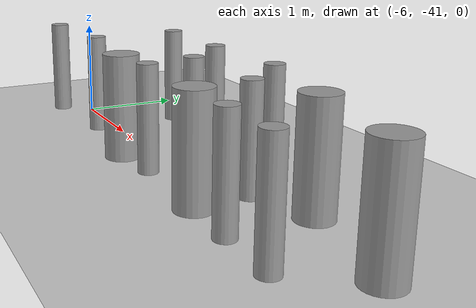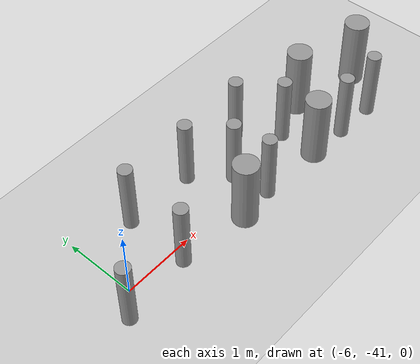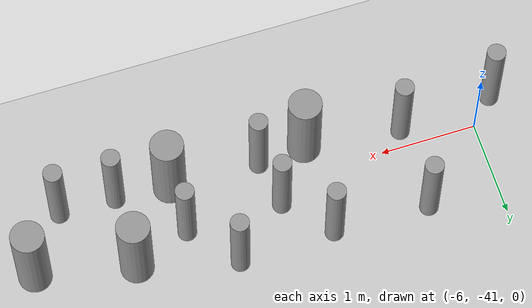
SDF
<sdf version="1.6">
 <world name="default">
  <model name="ground_plane">
   <static>1</static>
   <link name="link">
    <collision name="collision">
     <geometry><plane><normal>0 0 1</normal><size>100 100</size></plane></geometry>
     <surface><friction><ode><mu>100</mu><mu2>50</mu2></ode></friction></surface>
    </collision>
    <visual name="visual">
     <cast_shadows>0</cast_shadows>
     <geometry><plane><normal>0 0 1</normal><size>100 100</size></plane></geometry>
     <material>
      <script><uri>file://media/materials/scripts/gazebo.material</uri><name>Gazebo/Grey</name></script>
     </material>
    </visual>
   </link>
  </model>
  <model name="cyl_wall_clone_clone_3">
   <link name="link_0">
    <pose>-2.73893 -0.366465 0 0 -0 0</pose>
    <inertial>
     <mass>0.0374993</mass>
     <inertia>
      <ixx>0.00321281</ixx>
      <ixy>0</ixy>
      <ixz>0</ixz>
      <iyy>0.00321281</iyy>
      <iyz>0</iyz>
      <izz>0.000175774</izz>
     </inertia>
    </inertial>
    <visual name="visual">
     <geometry><cylinder><radius>0.0968661</radius><length>1</length></cylinder></geometry>
     <material>
      <lighting>1</lighting>
      <script><uri>file://media/materials/scripts/gazebo.material</uri><name>Gazebo/Grey</name></script>
      <ambient>0.3 0.3 0.3 1</ambient>
      <diffuse>0.7 0.7 0.7 1</diffuse>
      <specular>0.01 0.01 0.01 1</specular>
      <emissive>0 0 0 1</emissive>
     </material>
    </visual>
    <collision name="collision">
     <geometry><cylinder><radius>0.096866</radius><length>1</length></cylinder></geometry>
     <surface>
      <friction>
       <ode><mu>1</mu><mu2>1</mu2><fdir1>0 0 0</fdir1><slip1>0</slip1><slip2>0</slip2></ode>
       <torsional>
        <coefficient>1</coefficient>
        <patch_radius>0</patch_radius>
        <surface_radius>0</surface_radius>
        <use_patch_radius>1</use_patch_radius>
        <ode><slip>0</slip></ode>
       </torsional>
      </friction>
      <bounce><restitution_coefficient>0</restitution_coefficient><threshold>1e+06</threshold></bounce>
      <contact>
       <collide_without_contact>0</collide_without_contact>
       <collide_without_contact_bitmask>1</collide_without_contact_bitmask>
       <collide_bitmask>1</collide_bitmask>
       <ode>
        <soft_cfm>0</soft_cfm>
        <soft_erp>0.2</soft_erp>
        <kp>1e+13</kp>
        <kd>1</kd>
        <max_vel>0.01</max_vel>
        <min_depth>0</min_depth>
       </ode>
       <bullet>
        <split_impulse>1</split_impulse>
        <split_impulse_penetration_threshold>-0.01</split_impulse_penetration_threshold>
        <soft_cfm>0</soft_cfm>
        <soft_erp>0.2</soft_erp>
        <kp>1e+13</kp>
        <kd>1</kd>
       </bullet>
      </contact>
     </surface>
    </collision>
   </link>
   <link name="link_0_clone">
    <pose>-1.73893 0.61877 0 0 -0 0</pose>
    <inertial>
     <mass>0.0374993</mass>
     <inertia>
      <ixx>0.00321281</ixx>
      <ixy>0</ixy>
      <ixz>0</ixz>
      <iyy>0.00321281</iyy>
      <iyz>0</iyz>
      <izz>0.000175774</izz>
     </inertia>
    </inertial>
    <visual name="visual">
     <geometry><cylinder><radius>0.0968661</radius><length>1</length></cylinder></geometry>
     <material>
      <lighting>1</lighting>
      <script><uri>file://media/materials/scripts/gazebo.material</uri><name>Gazebo/Grey</name></script>
      <ambient>0.3 0.3 0.3 1</ambient>
      <diffuse>0.7 0.7 0.7 1</diffuse>
      <specular>0.01 0.01 0.01 1</specular>
      <emissive>0 0 0 1</emissive>
      <shader type="pixel"/>
     </material>
    </visual>
    <collision name="collision">
     <geometry><cylinder><radius>0.096866</radius><length>1</length></cylinder></geometry>
     <surface>
      <friction>
       <ode><mu>1</mu><mu2>1</mu2><fdir1>0 0 0</fdir1><slip1>0</slip1><slip2>0</slip2></ode>
       <torsional>
        <coefficient>1</coefficient>
        <patch_radius>0</patch_radius>
        <surface_radius>0</surface_radius>
        <use_patch_radius>1</use_patch_radius>
        <ode><slip>0</slip></ode>
       </torsional>
      </friction>
      <bounce><restitution_coefficient>0</restitution_coefficient><threshold>1e+06</threshold></bounce>
      <contact>
       <collide_without_contact>0</collide_without_contact>
       <collide_without_contact_bitmask>1</collide_without_contact_bitmask>
       <collide_bitmask>1</collide_bitmask>
       <ode>
        <soft_cfm>0</soft_cfm>
        <soft_erp>0.2</soft_erp>
        <kp>1e+13</kp>
        <kd>1</kd>
        <max_vel>0.01</max_vel>
        <min_depth>0</min_depth>
       </ode>
       <bullet>
        <split_impulse>1</split_impulse>
        <split_impulse_penetration_threshold>-0.01</split_impulse_penetration_threshold>
        <soft_cfm>0</soft_cfm>
        <soft_erp>0.2</soft_erp>
        <kp>1e+13</kp>
        <kd>1</kd>
       </bullet>
      </contact>
     </surface>
    </collision>
   </link>
   <link name="link_0_clone_clone">
    <pose>-0.327073 0.143919 0 0 -0 0</pose>
    <inertial>
     <mass>0.0374993</mass>
     <inertia>
      <ixx>0.00321281</ixx>
      <ixy>0</ixy>
      <ixz>0</ixz>
      <iyy>0.00321281</iyy>
      <iyz>0</iyz>
      <izz>0.000175774</izz>
     </inertia>
    </inertial>
    <visual name="visual">
     <geometry><cylinder><radius>0.0968661</radius><length>1</length></cylinder></geometry>
     <material>
      <lighting>1</lighting>
      <script><uri>file://media/materials/scripts/gazebo.material</uri><name>Gazebo/Grey</name></script>
      <ambient>0.3 0.3 0.3 1</ambient>
      <diffuse>0.7 0.7 0.7 1</diffuse>
      <specular>0.01 0.01 0.01 1</specular>
      <emissive>0 0 0 1</emissive>
      <shader type="pixel"/>
     </material>
    </visual>
    <collision name="collision">
     <geometry><cylinder><radius>0.096866</radius><length>1</length></cylinder></geometry>
     <surface>
      <friction>
       <ode><mu>1</mu><mu2>1</mu2><fdir1>0 0 0</fdir1><slip1>0</slip1><slip2>0</slip2></ode>
       <torsional>
        <coefficient>1</coefficient>
        <patch_radius>0</patch_radius>
        <surface_radius>0</surface_radius>
        <use_patch_radius>1</use_patch_radius>
        <ode><slip>0</slip></ode>
       </torsional>
      </friction>
      <bounce><restitution_coefficient>0</restitution_coefficient><threshold>1e+06</threshold></bounce>
      <contact>
       <collide_without_contact>0</collide_without_contact>
       <collide_without_contact_bitmask>1</collide_without_contact_bitmask>
       <collide_bitmask>1</collide_bitmask>
       <ode>
        <soft_cfm>0</soft_cfm>
        <soft_erp>0.2</soft_erp>
        <kp>1e+13</kp>
        <kd>1</kd>
        <max_vel>0.01</max_vel>
        <min_depth>0</min_depth>
       </ode>
       <bullet>
        <split_impulse>1</split_impulse>
        <split_impulse_penetration_threshold>-0.01</split_impulse_penetration_threshold>
        <soft_cfm>0</soft_cfm>
        <soft_erp>0.2</soft_erp>
        <kp>1e+13</kp>
        <kd>1</kd>
       </bullet>
      </contact>
     </surface>
    </collision>
   </link>
   <link name="link_0_clone_clone_0">
    <pose>1.26107 -0.419359 0 0 -0 0</pose>
    <inertial>
     <mass>0.0374993</mass>
     <inertia>
      <ixx>0.00321281</ixx>
      <ixy>0</ixy>
      <ixz>0</ixz>
      <iyy>0.00321281</iyy>
      <iyz>0</iyz>
      <izz>0.000175774</izz>
     </inertia>
    </inertial>
    <visual name="visual">
     <geometry><cylinder><radius>0.0968661</radius><length>1</length></cylinder></geometry>
     <material>
      <lighting>1</lighting>
      <script><uri>file://media/materials/scripts/gazebo.material</uri><name>Gazebo/Grey</name></script>
      <ambient>0.3 0.3 0.3 1</ambient>
      <diffuse>0.7 0.7 0.7 1</diffuse>
      <specular>0.01 0.01 0.01 1</specular>
      <emissive>0 0 0 1</emissive>
      <shader type="pixel"/>
     </material>
    </visual>
    <collision name="collision">
     <geometry><cylinder><radius>0.096866</radius><length>1</length></cylinder></geometry>
     <surface>
      <friction>
       <ode><mu>1</mu><mu2>1</mu2><fdir1>0 0 0</fdir1><slip1>0</slip1><slip2>0</slip2></ode>
       <torsional>
        <coefficient>1</coefficient>
        <patch_radius>0</patch_radius>
        <surface_radius>0</surface_radius>
        <use_patch_radius>1</use_patch_radius>
        <ode><slip>0</slip></ode>
       </torsional>
      </friction>
      <bounce><restitution_coefficient>0</restitution_coefficient><threshold>1e+06</threshold></bounce>
      <contact>
       <collide_without_contact>0</collide_without_contact>
       <collide_without_contact_bitmask>1</collide_without_contact_bitmask>
       <collide_bitmask>1</collide_bitmask>
       <ode>
        <soft_cfm>0</soft_cfm>
        <soft_erp>0.2</soft_erp>
        <kp>1e+13</kp>
        <kd>1</kd>
        <max_vel>0.01</max_vel>
        <min_depth>0</min_depth>
       </ode>
       <bullet>
        <split_impulse>1</split_impulse>
        <split_impulse_penetration_threshold>-0.01</split_impulse_penetration_threshold>
        <soft_cfm>0</soft_cfm>
        <soft_erp>0.2</soft_erp>
        <kp>1e+13</kp>
        <kd>1</kd>
       </bullet>
      </contact>
     </surface>
    </collision>
   </link>
   <link name="link_0_clone_clone_1">
    <pose>-1.73893 -0.277168 0 0 -0 0</pose>
    <inertial>
     <mass>0.0374993</mass>
     <inertia>
      <ixx>0.00321281</ixx>
      <ixy>0</ixy>
      <ixz>0</ixz>
      <iyy>0.00321281</iyy>
      <iyz>0</iyz>
      <izz>0.000175774</izz>
     </inertia>
    </inertial>
    <visual name="visual">
     <geometry><cylinder><radius>0.0968661</radius><length>1</length></cylinder></geometry>
     <material>
      <lighting>1</lighting>
      <script><uri>file://media/materials/scripts/gazebo.material</uri><name>Gazebo/Grey</name></script>
      <ambient>0.3 0.3 0.3 1</ambient>
      <diffuse>0.7 0.7 0.7 1</diffuse>
      <specular>0.01 0.01 0.01 1</specular>
      <emissive>0 0 0 1</emissive>
      <shader type="pixel"/>
     </material>
    </visual>
    <collision name="collision">
     <geometry><cylinder><radius>0.096866</radius><length>1</length></cylinder></geometry>
     <surface>
      <friction>
       <ode><mu>1</mu><mu2>1</mu2><fdir1>0 0 0</fdir1><slip1>0</slip1><slip2>0</slip2></ode>
       <torsional>
        <coefficient>1</coefficient>
        <patch_radius>0</patch_radius>
        <surface_radius>0</surface_radius>
        <use_patch_radius>1</use_patch_radius>
        <ode><slip>0</slip></ode>
       </torsional>
      </friction>
      <bounce><restitution_coefficient>0</restitution_coefficient><threshold>1e+06</threshold></bounce>
      <contact>
       <collide_without_contact>0</collide_without_contact>
       <collide_without_contact_bitmask>1</collide_without_contact_bitmask>
       <collide_bitmask>1</collide_bitmask>
       <ode>
        <soft_cfm>0</soft_cfm>
        <soft_erp>0.2</soft_erp>
        <kp>1e+13</kp>
        <kd>1</kd>
        <max_vel>0.01</max_vel>
        <min_depth>0</min_depth>
       </ode>
       <bullet>
        <split_impulse>1</split_impulse>
        <split_impulse_penetration_threshold>-0.01</split_impulse_penetration_threshold>
        <soft_cfm>0</soft_cfm>
        <soft_erp>0.2</soft_erp>
        <kp>1e+13</kp>
        <kd>1</kd>
       </bullet>
      </contact>
     </surface>
    </collision>
   </link>
   <link name="link_0_clone_clone_2">
    <pose>-0.738934 0.593961 0 0 -0 0</pose>
    <inertial>
     <mass>0.0374993</mass>
     <inertia>
      <ixx>0.00321281</ixx>
      <ixy>0</ixy>
      <ixz>0</ixz>
      <iyy>0.00321281</iyy>
      <iyz>0</iyz>
      <izz>0.000175774</izz>
     </inertia>
    </inertial>
    <visual name="visual">
     <geometry><cylinder><radius>0.0968661</radius><length>1</length></cylinder></geometry>
     <material>
      <lighting>1</lighting>
      <script><uri>file://media/materials/scripts/gazebo.material</uri><name>Gazebo/Grey</name></script>
      <ambient>0.3 0.3 0.3 1</ambient>
      <diffuse>0.7 0.7 0.7 1</diffuse>
      <specular>0.01 0.01 0.01 1</specular>
      <emissive>0 0 0 1</emissive>
      <shader type="pixel"/>
     </material>
    </visual>
    <collision name="collision">
     <geometry><cylinder><radius>0.096866</radius><length>1</length></cylinder></geometry>
     <surface>
      <friction>
       <ode><mu>1</mu><mu2>1</mu2><fdir1>0 0 0</fdir1><slip1>0</slip1><slip2>0</slip2></ode>
       <torsional>
        <coefficient>1</coefficient>
        <patch_radius>0</patch_radius>
        <surface_radius>0</surface_radius>
        <use_patch_radius>1</use_patch_radius>
        <ode><slip>0</slip></ode>
       </torsional>
      </friction>
      <bounce><restitution_coefficient>0</restitution_coefficient><threshold>1e+06</threshold></bounce>
      <contact>
       <collide_without_contact>0</collide_without_contact>
       <collide_without_contact_bitmask>1</collide_without_contact_bitmask>
       <collide_bitmask>1</collide_bitmask>
       <ode>
        <soft_cfm>0</soft_cfm>
        <soft_erp>0.2</soft_erp>
        <kp>1e+13</kp>
        <kd>1</kd>
        <max_vel>0.01</max_vel>
        <min_depth>0</min_depth>
       </ode>
       <bullet>
        <split_impulse>1</split_impulse>
        <split_impulse_penetration_threshold>-0.01</split_impulse_penetration_threshold>
        <soft_cfm>0</soft_cfm>
        <soft_erp>0.2</soft_erp>
        <kp>1e+13</kp>
        <kd>1</kd>
       </bullet>
      </contact>
     </surface>
    </collision>
   </link>
   <link name="link_0_clone_clone_3">
    <pose>0.261066 0.624849 0 0 -0 0</pose>
    <inertial>
     <mass>0.0374993</mass>
     <inertia>
      <ixx>0.00321281</ixx>
      <ixy>0</ixy>
      <ixz>0</ixz>
      <iyy>0.00321281</iyy>
      <iyz>0</iyz>
      <izz>0.000175774</izz>
     </inertia>
    </inertial>
    <visual name="visual">
     <geometry><cylinder><radius>0.0968661</radius><length>1</length></cylinder></geometry>
     <material>
      <lighting>1</lighting>
      <script><uri>file://media/materials/scripts/gazebo.material</uri><name>Gazebo/Grey</name></script>
      <ambient>0.3 0.3 0.3 1</ambient>
      <diffuse>0.7 0.7 0.7 1</diffuse>
      <specular>0.01 0.01 0.01 1</specular>
      <emissive>0 0 0 1</emissive>
      <shader type="pixel"/>
     </material>
    </visual>
    <collision name="collision">
     <geometry><cylinder><radius>0.096866</radius><length>1</length></cylinder></geometry>
     <surface>
      <friction>
       <ode><mu>1</mu><mu2>1</mu2><fdir1>0 0 0</fdir1><slip1>0</slip1><slip2>0</slip2></ode>
       <torsional>
        <coefficient>1</coefficient>
        <patch_radius>0</patch_radius>
        <surface_radius>0</surface_radius>
        <use_patch_radius>1</use_patch_radius>
        <ode><slip>0</slip></ode>
       </torsional>
      </friction>
      <bounce><restitution_coefficient>0</restitution_coefficient><threshold>1e+06</threshold></bounce>
      <contact>
       <collide_without_contact>0</collide_without_contact>
       <collide_without_contact_bitmask>1</collide_without_contact_bitmask>
       <collide_bitmask>1</collide_bitmask>
       <ode>
        <soft_cfm>0</soft_cfm>
        <soft_erp>0.2</soft_erp>
        <kp>1e+13</kp>
        <kd>1</kd>
        <max_vel>0.01</max_vel>
        <min_depth>0</min_depth>
       </ode>
       <bullet>
        <split_impulse>1</split_impulse>
        <split_impulse_penetration_threshold>-0.01</split_impulse_penetration_threshold>
        <soft_cfm>0</soft_cfm>
        <soft_erp>0.2</soft_erp>
        <kp>1e+13</kp>
        <kd>1</kd>
       </bullet>
      </contact>
     </surface>
    </collision>
   </link>
   <link name="link_0_clone_clone_4">
    <pose>-0.239049 -0.353105 0 0 -0 0</pose>
    <inertial>
     <mass>0.0374993</mass>
     <inertia>
      <ixx>0.00321281</ixx>
      <ixy>0</ixy>
      <ixz>0</ixz>
      <iyy>0.00321281</iyy>
      <iyz>0</iyz>
      <izz>0.000175774</izz>
     </inertia>
    </inertial>
    <visual name="visual">
     <geometry><cylinder><radius>0.0968661</radius><length>1</length></cylinder></geometry>
     <material>
      <lighting>1</lighting>
      <script><uri>file://media/materials/scripts/gazebo.material</uri><name>Gazebo/Grey</name></script>
      <ambient>0.3 0.3 0.3 1</ambient>
      <diffuse>0.7 0.7 0.7 1</diffuse>
      <specular>0.01 0.01 0.01 1</specular>
      <emissive>0 0 0 1</emissive>
      <shader type="pixel"/>
     </material>
    </visual>
    <collision name="collision">
     <geometry><cylinder><radius>0.096866</radius><length>1</length></cylinder></geometry>
     <surface>
      <friction>
       <ode><mu>1</mu><mu2>1</mu2><fdir1>0 0 0</fdir1><slip1>0</slip1><slip2>0</slip2></ode>
       <torsional>
        <coefficient>1</coefficient>
        <patch_radius>0</patch_radius>
        <surface_radius>0</surface_radius>
        <use_patch_radius>1</use_patch_radius>
        <ode><slip>0</slip></ode>
       </torsional>
      </friction>
      <bounce><restitution_coefficient>0</restitution_coefficient><threshold>1e+06</threshold></bounce>
      <contact>
       <collide_without_contact>0</collide_without_contact>
       <collide_without_contact_bitmask>1</collide_without_contact_bitmask>
       <collide_bitmask>1</collide_bitmask>
       <ode>
        <soft_cfm>0</soft_cfm>
        <soft_erp>0.2</soft_erp>
        <kp>1e+13</kp>
        <kd>1</kd>
        <max_vel>0.01</max_vel>
        <min_depth>0</min_depth>
       </ode>
       <bullet>
        <split_impulse>1</split_impulse>
        <split_impulse_penetration_threshold>-0.01</split_impulse_penetration_threshold>
        <soft_cfm>0</soft_cfm>
        <soft_erp>0.2</soft_erp>
        <kp>1e+13</kp>
        <kd>1</kd>
       </bullet>
      </contact>
     </surface>
    </collision>
   </link>
   <link name="link_0_clone_clone_5">
    <pose>0.672792 0.143919 0 0 -0 0</pose>
    <inertial>
     <mass>0.0374993</mass>
     <inertia>
      <ixx>0.00321281</ixx>
      <ixy>0</ixy>
      <ixz>0</ixz>
      <iyy>0.00321281</iyy>
      <iyz>0</iyz>
      <izz>0.000175774</izz>
     </inertia>
    </inertial>
    <visual name="visual">
     <geometry><cylinder><radius>0.0968661</radius><length>1</length></cylinder></geometry>
     <material>
      <lighting>1</lighting>
      <script><uri>file://media/materials/scripts/gazebo.material</uri><name>Gazebo/Grey</name></script>
      <ambient>0.3 0.3 0.3 1</ambient>
      <diffuse>0.7 0.7 0.7 1</diffuse>
      <specular>0.01 0.01 0.01 1</specular>
      <emissive>0 0 0 1</emissive>
      <shader type="pixel"/>
     </material>
    </visual>
    <collision name="collision">
     <geometry><cylinder><radius>0.096866</radius><length>1</length></cylinder></geometry>
     <surface>
      <friction>
       <ode><mu>1</mu><mu2>1</mu2><fdir1>0 0 0</fdir1><slip1>0</slip1><slip2>0</slip2></ode>
       <torsional>
        <coefficient>1</coefficient>
        <patch_radius>0</patch_radius>
        <surface_radius>0</surface_radius>
        <use_patch_radius>1</use_patch_radius>
        <ode><slip>0</slip></ode>
       </torsional>
      </friction>
      <bounce><restitution_coefficient>0</restitution_coefficient><threshold>1e+06</threshold></bounce>
      <contact>
       <collide_without_contact>0</collide_without_contact>
       <collide_without_contact_bitmask>1</collide_without_contact_bitmask>
       <collide_bitmask>1</collide_bitmask>
       <ode>
        <soft_cfm>0</soft_cfm>
        <soft_erp>0.2</soft_erp>
        <kp>1e+13</kp>
        <kd>1</kd>
        <max_vel>0.01</max_vel>
        <min_depth>0</min_depth>
       </ode>
       <bullet>
        <split_impulse>1</split_impulse>
        <split_impulse_penetration_threshold>-0.01</split_impulse_penetration_threshold>
        <soft_cfm>0</soft_cfm>
        <soft_erp>0.2</soft_erp>
        <kp>1e+13</kp>
        <kd>1</kd>
       </bullet>
      </contact>
     </surface>
    </collision>
   </link>
   <link name="link_0_clone_clone_6">
    <pose>1.84596 -0.433423 0 0 -0 0</pose>
    <inertial>
     <mass>0.0374993</mass>
     <inertia>
      <ixx>0.00321281</ixx>
      <ixy>0</ixy>
      <ixz>0</ixz>
      <iyy>0.00321281</iyy>
      <iyz>0</iyz>
      <izz>0.000175774</izz>
     </inertia>
    </inertial>
    <visual name="visual">
     <geometry><cylinder><radius>0.0968661</radius><length>1</length></cylinder></geometry>
     <material>
      <lighting>1</lighting>
      <script><uri>file://media/materials/scripts/gazebo.material</uri><name>Gazebo/Grey</name></script>
      <ambient>0.3 0.3 0.3 1</ambient>
      <diffuse>0.7 0.7 0.7 1</diffuse>
      <specular>0.01 0.01 0.01 1</specular>
      <emissive>0 0 0 1</emissive>
      <shader type="pixel"/>
     </material>
    </visual>
    <collision name="collision">
     <geometry><cylinder><radius>0.096866</radius><length>1</length></cylinder></geometry>
     <surface>
      <friction>
       <ode><mu>1</mu><mu2>1</mu2><fdir1>0 0 0</fdir1><slip1>0</slip1><slip2>0</slip2></ode>
       <torsional>
        <coefficient>1</coefficient>
        <patch_radius>0</patch_radius>
        <surface_radius>0</surface_radius>
        <use_patch_radius>1</use_patch_radius>
        <ode><slip>0</slip></ode>
       </torsional>
      </friction>
      <bounce><restitution_coefficient>0</restitution_coefficient><threshold>1e+06</threshold></bounce>
      <contact>
       <collide_without_contact>0</collide_without_contact>
       <collide_without_contact_bitmask>1</collide_without_contact_bitmask>
       <collide_bitmask>1</collide_bitmask>
       <ode>
        <soft_cfm>0</soft_cfm>
        <soft_erp>0.2</soft_erp>
        <kp>1e+13</kp>
        <kd>1</kd>
        <max_vel>0.01</max_vel>
        <min_depth>0</min_depth>
       </ode>
       <bullet>
        <split_impulse>1</split_impulse>
        <split_impulse_penetration_threshold>-0.01</split_impulse_penetration_threshold>
        <soft_cfm>0</soft_cfm>
        <soft_erp>0.2</soft_erp>
        <kp>1e+13</kp>
        <kd>1</kd>
       </bullet>
      </contact>
     </surface>
    </collision>
   </link>
   <link name="link_1">
    <pose>-0.738934 -0.397931 0 0 -0 0</pose>
    <inertial>
     <mass>0.117398</mass>
     <inertia>
      <ixx>0.0106445</ixx>
      <ixy>0</ixy>
      <ixz>0</ixz>
      <iyy>0.0106445</iyy>
      <iyz>0</iyz>
      <izz>0.00172278</izz>
     </inertia>
    </inertial>
    <visual name="visual">
     <geometry><cylinder><radius>0.171317</radius><length>1</length></cylinder></geometry>
     <material>
      <lighting>1</lighting>
      <script><uri>file://media/materials/scripts/gazebo.material</uri><name>Gazebo/Grey</name></script>
      <ambient>0.3 0.3 0.3 1</ambient>
      <diffuse>0.7 0.7 0.7 1</diffuse>
      <specular>0.01 0.01 0.01 1</specular>
      <emissive>0 0 0 1</emissive>
     </material>
    </visual>
    <collision name="collision">
     <geometry><cylinder><radius>0.171317</radius><length>1</length></cylinder></geometry>
     <surface>
      <friction>
       <ode><mu>1</mu><mu2>1</mu2><fdir1>0 0 0</fdir1><slip1>0</slip1><slip2>0</slip2></ode>
       <torsional>
        <coefficient>1</coefficient>
        <patch_radius>0</patch_radius>
        <surface_radius>0</surface_radius>
        <use_patch_radius>1</use_patch_radius>
        <ode><slip>0</slip></ode>
       </torsional>
      </friction>
      <bounce><restitution_coefficient>0</restitution_coefficient><threshold>1e+06</threshold></bounce>
      <contact>
       <collide_without_contact>0</collide_without_contact>
       <collide_without_contact_bitmask>1</collide_without_contact_bitmask>
       <collide_bitmask>1</collide_bitmask>
       <ode>
        <soft_cfm>0</soft_cfm>
        <soft_erp>0.2</soft_erp>
        <kp>1e+13</kp>
        <kd>1</kd>
        <max_vel>0.01</max_vel>
        <min_depth>0</min_depth>
       </ode>
       <bullet>
        <split_impulse>1</split_impulse>
        <split_impulse_penetration_threshold>-0.01</split_impulse_penetration_threshold>
        <soft_cfm>0</soft_cfm>
        <soft_erp>0.2</soft_erp>
        <kp>1e+13</kp>
        <kd>1</kd>
       </bullet>
      </contact>
     </surface>
    </collision>
   </link>
   <link name="link_1_clone">
    <pose>0.697784 -0.380861 0 0 -0 0</pose>
    <inertial>
     <mass>0.117398</mass>
     <inertia>
      <ixx>0.0106445</ixx>
      <ixy>0</ixy>
      <ixz>0</ixz>
      <iyy>0.0106445</iyy>
      <iyz>0</iyz>
      <izz>0.00172278</izz>
     </inertia>
    </inertial>
    <visual name="visual">
     <geometry><cylinder><radius>0.171317</radius><length>1</length></cylinder></geometry>
     <material>
      <lighting>1</lighting>
      <script><uri>file://media/materials/scripts/gazebo.material</uri><name>Gazebo/Grey</name></script>
      <ambient>0.3 0.3 0.3 1</ambient>
      <diffuse>0.7 0.7 0.7 1</diffuse>
      <specular>0.01 0.01 0.01 1</specular>
      <emissive>0 0 0 1</emissive>
      <shader type="pixel"/>
     </material>
    </visual>
    <collision name="collision">
     <geometry><cylinder><radius>0.171317</radius><length>1</length></cylinder></geometry>
     <surface>
      <friction>
       <ode><mu>1</mu><mu2>1</mu2><fdir1>0 0 0</fdir1><slip1>0</slip1><slip2>0</slip2></ode>
       <torsional>
        <coefficient>1</coefficient>
        <patch_radius>0</patch_radius>
        <surface_radius>0</surface_radius>
        <use_patch_radius>1</use_patch_radius>
        <ode><slip>0</slip></ode>
       </torsional>
      </friction>
      <bounce><restitution_coefficient>0</restitution_coefficient><threshold>1e+06</threshold></bounce>
      <contact>
       <collide_without_contact>0</collide_without_contact>
       <collide_without_contact_bitmask>1</collide_without_contact_bitmask>
       <collide_bitmask>1</collide_bitmask>
       <ode>
        <soft_cfm>0</soft_cfm>
        <soft_erp>0.2</soft_erp>
        <kp>1e+13</kp>
        <kd>1</kd>
        <max_vel>0.01</max_vel>
        <min_depth>0</min_depth>
       </ode>
       <bullet>
        <split_impulse>1</split_impulse>
        <split_impulse_penetration_threshold>-0.01</split_impulse_penetration_threshold>
        <soft_cfm>0</soft_cfm>
        <soft_erp>0.2</soft_erp>
        <kp>1e+13</kp>
        <kd>1</kd>
       </bullet>
      </contact>
     </surface>
    </collision>
   </link>
   <link name="link_1_clone_0">
    <pose>1.26107 0.358974 0 0 -0 0</pose>
    <inertial>
     <mass>0.117398</mass>
     <inertia>
      <ixx>0.0106445</ixx>
      <ixy>0</ixy>
      <ixz>0</ixz>
      <iyy>0.0106445</iyy>
      <iyz>0</iyz>
      <izz>0.00172278</izz>
     </inertia>
    </inertial>
    <visual name="visual">
     <geometry><cylinder><radius>0.171317</radius><length>1</length></cylinder></geometry>
     <material>
      <lighting>1</lighting>
      <script><uri>file://media/materials/scripts/gazebo.material</uri><name>Gazebo/Grey</name></script>
      <ambient>0.3 0.3 0.3 1</ambient>
      <diffuse>0.7 0.7 0.7 1</diffuse>
      <specular>0.01 0.01 0.01 1</specular>
      <emissive>0 0 0 1</emissive>
      <shader type="pixel"/>
     </material>
    </visual>
    <collision name="collision">
     <geometry><cylinder><radius>0.171317</radius><length>1</length></cylinder></geometry>
     <surface>
      <friction>
       <ode><mu>1</mu><mu2>1</mu2><fdir1>0 0 0</fdir1><slip1>0</slip1><slip2>0</slip2></ode>
       <torsional>
        <coefficient>1</coefficient>
        <patch_radius>0</patch_radius>
        <surface_radius>0</surface_radius>
        <use_patch_radius>1</use_patch_radius>
        <ode><slip>0</slip></ode>
       </torsional>
      </friction>
      <bounce><restitution_coefficient>0</restitution_coefficient><threshold>1e+06</threshold></bounce>
      <contact>
       <collide_without_contact>0</collide_without_contact>
       <collide_without_contact_bitmask>1</collide_without_contact_bitmask>
       <collide_bitmask>1</collide_bitmask>
       <ode>
        <soft_cfm>0</soft_cfm>
        <soft_erp>0.2</soft_erp>
        <kp>1e+13</kp>
        <kd>1</kd>
        <max_vel>0.01</max_vel>
        <min_depth>0</min_depth>
       </ode>
       <bullet>
        <split_impulse>1</split_impulse>
        <split_impulse_penetration_threshold>-0.01</split_impulse_penetration_threshold>
        <soft_cfm>0</soft_cfm>
        <soft_erp>0.2</soft_erp>
        <kp>1e+13</kp>
        <kd>1</kd>
       </bullet>
      </contact>
     </surface>
    </collision>
   </link>
   <link name="link_1_clone_1">
    <pose>2.26107 0.143919 0 0 -0 0</pose>
    <inertial>
     <mass>0.117398</mass>
     <inertia>
      <ixx>0.0106445</ixx>
      <ixy>0</ixy>
      <ixz>0</ixz>
      <iyy>0.0106445</iyy>
      <iyz>0</iyz>
      <izz>0.00172278</izz>
     </inertia>
    </inertial>
    <visual name="visual">
     <geometry><cylinder><radius>0.171317</radius><length>1</length></cylinder></geometry>
     <material>
      <lighting>1</lighting>
      <script><uri>file://media/materials/scripts/gazebo.material</uri><name>Gazebo/Grey</name></script>
      <ambient>0.3 0.3 0.3 1</ambient>
      <diffuse>0.7 0.7 0.7 1</diffuse>
      <specular>0.01 0.01 0.01 1</specular>
      <emissive>0 0 0 1</emissive>
      <shader type="pixel"/>
     </material>
    </visual>
    <collision name="collision">
     <geometry><cylinder><radius>0.171317</radius><length>1</length></cylinder></geometry>
     <surface>
      <friction>
       <ode><mu>1</mu><mu2>1</mu2><fdir1>0 0 0</fdir1><slip1>0</slip1><slip2>0</slip2></ode>
       <torsional>
        <coefficient>1</coefficient>
        <patch_radius>0</patch_radius>
        <surface_radius>0</surface_radius>
        <use_patch_radius>1</use_patch_radius>
        <ode><slip>0</slip></ode>
       </torsional>
      </friction>
      <bounce><restitution_coefficient>0</restitution_coefficient><threshold>1e+06</threshold></bounce>
      <contact>
       <collide_without_contact>0</collide_without_contact>
       <collide_without_contact_bitmask>1</collide_without_contact_bitmask>
       <collide_bitmask>1</collide_bitmask>
       <ode>
        <soft_cfm>0</soft_cfm>
        <soft_erp>0.2</soft_erp>
        <kp>1e+13</kp>
        <kd>1</kd>
        <max_vel>0.01</max_vel>
        <min_depth>0</min_depth>
       </ode>
       <bullet>
        <split_impulse>1</split_impulse>
        <split_impulse_penetration_threshold>-0.01</split_impulse_penetration_threshold>
        <soft_cfm>0</soft_cfm>
        <soft_erp>0.2</soft_erp>
        <kp>1e+13</kp>
        <kd>1</kd>
       </bullet>
      </contact>
     </surface>
    </collision>
   </link>
   <static>1</static>
   <pose>-3.52028 -40.9033 0.5 0 -0 0</pose>
  </model>
 </world>
</sdf>
